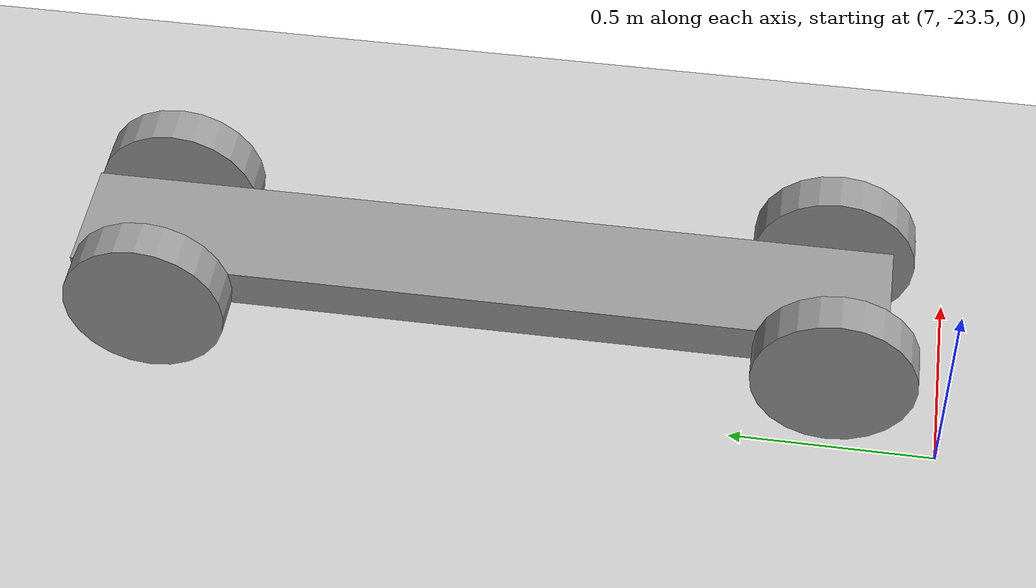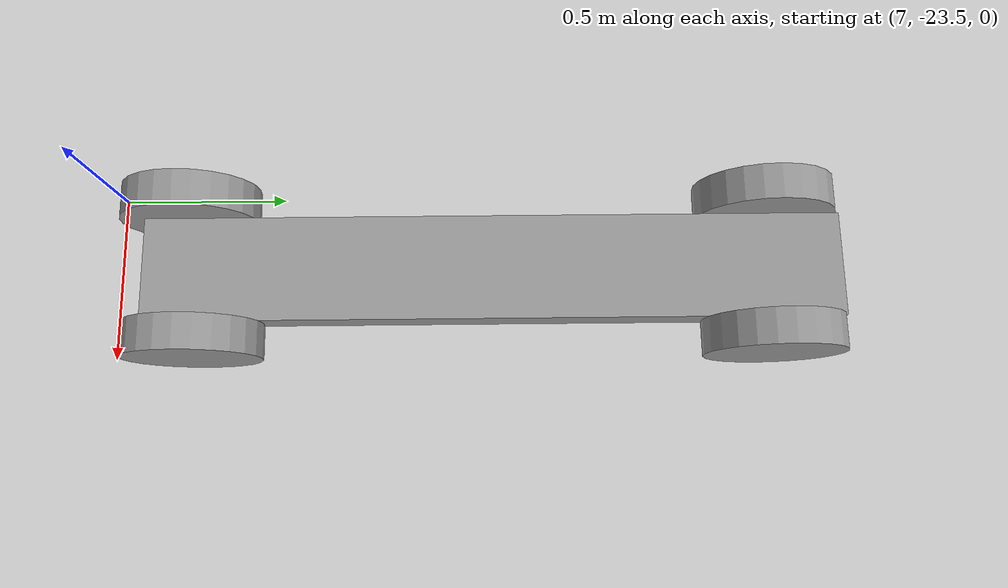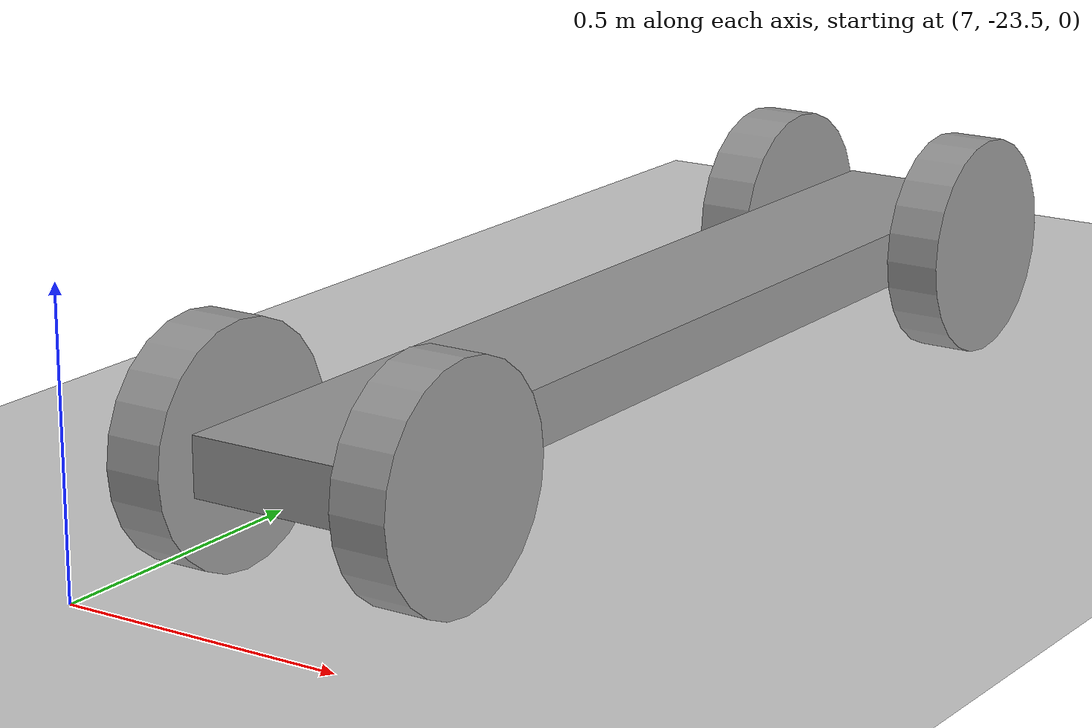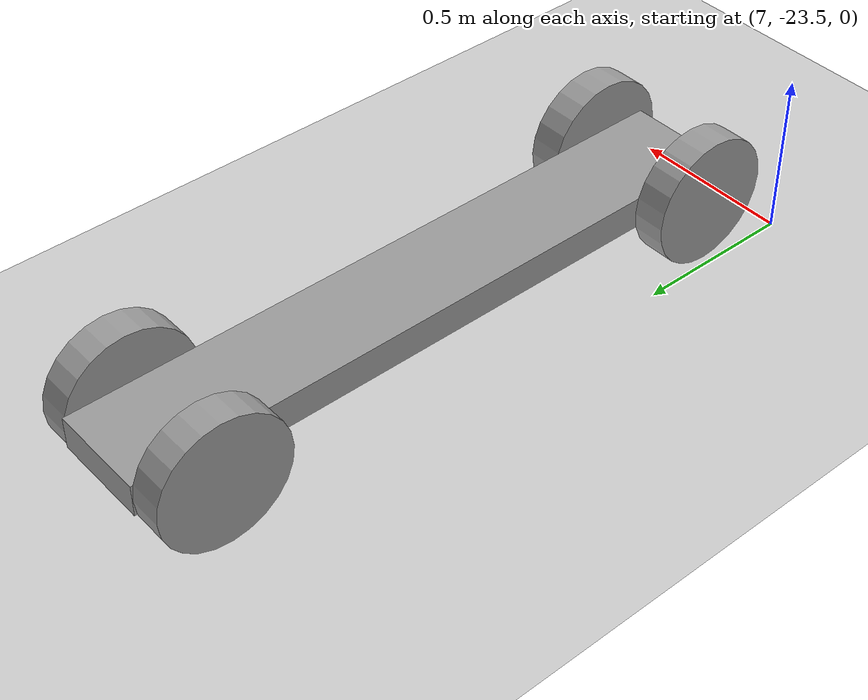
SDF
<sdf version="1.6">
 <world name="default">
  <model name="ground_plane">
   <static>1</static>
   <link name="link">
    <collision name="collision">
     <geometry><plane><normal>0 0 1</normal><size>100 100</size></plane></geometry>
     <surface>
      <contact><collide_bitmask>65535</collide_bitmask></contact>
      <friction><ode><mu>100</mu><mu2>50</mu2></ode></friction>
     </surface>
    </collision>
    <visual name="visual">
     <cast_shadows>0</cast_shadows>
     <geometry><plane><normal>0 0 1</normal><size>100 100</size></plane></geometry>
     <material>
      <script><uri>file://media/materials/scripts/gazebo.material</uri><name>Gazebo/Grey</name></script>
     </material>
    </visual>
   </link>
  </model>
  <model name="myrobot_2">
   <link name="link_0">
    <pose>-20.1793 -31.7509 0.74 0 -0 0</pose>
    <inertial>
     <mass>1</mass>
     <inertia>
      <ixx>0.166667</ixx>
      <ixy>0</ixy>
      <ixz>0</ixz>
      <iyy>0.166667</iyy>
      <iyz>0</iyz>
      <izz>0.166667</izz>
     </inertia>
    </inertial>
    <visual name="visual">
     <pose>0 0 -0.3 0 -0 0</pose>
     <geometry><box><size>0.3 2 0.1</size></box></geometry>
     <material>
      <lighting>1</lighting>
      <script><uri>file://media/materials/scripts/gazebo.material</uri><name>Gazebo/Grey</name></script>
      <shader type="pixel"><normal_map>__default__</normal_map></shader>
      <ambient>0.3 0.3 0.3 1</ambient>
      <diffuse>0.7 0.7 0.7 1</diffuse>
      <specular>0.01 0.01 0.01 1</specular>
      <emissive>0 0 0 1</emissive>
     </material>
    </visual>
    <collision name="collision">
     <pose>0 0 -0.3 0 -0 0</pose>
     <geometry><box><size>0.3 2 0.1</size></box></geometry>
     <surface>
      <friction>
       <ode><mu>1</mu><mu2>1</mu2><fdir1>0 0 0</fdir1><slip1>0</slip1><slip2>0</slip2></ode>
       <torsional>
        <coefficient>1</coefficient>
        <patch_radius>0</patch_radius>
        <surface_radius>0</surface_radius>
        <use_patch_radius>1</use_patch_radius>
        <ode><slip>0</slip></ode>
       </torsional>
      </friction>
      <bounce><restitution_coefficient>0</restitution_coefficient><threshold>1e+06</threshold></bounce>
      <contact>
       <collide_without_contact>0</collide_without_contact>
       <collide_without_contact_bitmask>1</collide_without_contact_bitmask>
       <collide_bitmask>1</collide_bitmask>
       <ode>
        <soft_cfm>0</soft_cfm>
        <soft_erp>0.2</soft_erp>
        <kp>1e+13</kp>
        <kd>1</kd>
        <max_vel>0.01</max_vel>
        <min_depth>0</min_depth>
       </ode>
       <bullet>
        <split_impulse>1</split_impulse>
        <split_impulse_penetration_threshold>-0.01</split_impulse_penetration_threshold>
        <soft_cfm>0</soft_cfm>
        <soft_erp>0.2</soft_erp>
        <kp>1e+13</kp>
        <kd>1</kd>
       </bullet>
      </contact>
     </surface>
    </collision>
   </link>
   <link name="link_1">
    <pose>-20.3793 -30.9528 0.44 1.5707 0 1.5707</pose>
    <inertial>
     <mass>1</mass>
     <inertia><ixx>0.145833</ixx><ixy>0</ixy><ixz>0</ixz><iyy>0.145833</iyy><iyz>0</iyz><izz>0.125</izz></inertia>
    </inertial>
    <visual name="visual">
     <geometry><cylinder><radius>0.2</radius><length>0.1</length></cylinder></geometry>
     <material>
      <lighting>1</lighting>
      <script><uri>file://media/materials/scripts/gazebo.material</uri><name>Gazebo/Grey</name></script>
      <shader type="pixel"><normal_map>__default__</normal_map></shader>
      <ambient>0.3 0.3 0.3 1</ambient>
      <diffuse>0.7 0.7 0.7 1</diffuse>
      <specular>0.01 0.01 0.01 1</specular>
      <emissive>0 0 0 1</emissive>
     </material>
    </visual>
    <collision name="collision">
     <geometry><cylinder><radius>0.2</radius><length>0.1</length></cylinder></geometry>
     <surface>
      <friction>
       <ode><mu>1</mu><mu2>1</mu2><fdir1>0 0 0</fdir1><slip1>0</slip1><slip2>0</slip2></ode>
       <torsional>
        <coefficient>1</coefficient>
        <patch_radius>0</patch_radius>
        <surface_radius>0</surface_radius>
        <use_patch_radius>1</use_patch_radius>
        <ode><slip>0</slip></ode>
       </torsional>
      </friction>
      <bounce><restitution_coefficient>0</restitution_coefficient><threshold>1e+06</threshold></bounce>
      <contact>
       <collide_without_contact>0</collide_without_contact>
       <collide_without_contact_bitmask>1</collide_without_contact_bitmask>
       <collide_bitmask>1</collide_bitmask>
       <ode>
        <soft_cfm>0</soft_cfm>
        <soft_erp>0.2</soft_erp>
        <kp>1e+13</kp>
        <kd>1</kd>
        <max_vel>0.01</max_vel>
        <min_depth>0</min_depth>
       </ode>
       <bullet>
        <split_impulse>1</split_impulse>
        <split_impulse_penetration_threshold>-0.01</split_impulse_penetration_threshold>
        <soft_cfm>0</soft_cfm>
        <soft_erp>0.2</soft_erp>
        <kp>1e+13</kp>
        <kd>1</kd>
       </bullet>
      </contact>
     </surface>
    </collision>
   </link>
   <link name="link_1_clone">
    <pose>-19.9793 -30.9509 0.44 1.5707 0 1.5707</pose>
    <inertial>
     <mass>1</mass>
     <inertia><ixx>0.145833</ixx><ixy>0</ixy><ixz>0</ixz><iyy>0.145833</iyy><iyz>0</iyz><izz>0.125</izz></inertia>
    </inertial>
    <visual name="visual">
     <geometry><cylinder><radius>0.2</radius><length>0.1</length></cylinder></geometry>
     <material>
      <lighting>1</lighting>
      <script><uri>file://media/materials/scripts/gazebo.material</uri><name>Gazebo/Grey</name></script>
      <shader type="pixel"><normal_map>__default__</normal_map></shader>
      <ambient>0.3 0.3 0.3 1</ambient>
      <diffuse>0.7 0.7 0.7 1</diffuse>
      <specular>0.01 0.01 0.01 1</specular>
      <emissive>0 0 0 1</emissive>
     </material>
    </visual>
    <collision name="collision">
     <geometry><cylinder><radius>0.2</radius><length>0.1</length></cylinder></geometry>
     <surface>
      <friction>
       <ode><mu>1</mu><mu2>1</mu2><fdir1>0 0 0</fdir1><slip1>0</slip1><slip2>0</slip2></ode>
       <torsional>
        <coefficient>1</coefficient>
        <patch_radius>0</patch_radius>
        <surface_radius>0</surface_radius>
        <use_patch_radius>1</use_patch_radius>
        <ode><slip>0</slip></ode>
       </torsional>
      </friction>
      <bounce><restitution_coefficient>0</restitution_coefficient><threshold>1e+06</threshold></bounce>
      <contact>
       <collide_without_contact>0</collide_without_contact>
       <collide_without_contact_bitmask>1</collide_without_contact_bitmask>
       <collide_bitmask>1</collide_bitmask>
       <ode>
        <soft_cfm>0</soft_cfm>
        <soft_erp>0.2</soft_erp>
        <kp>1e+13</kp>
        <kd>1</kd>
        <max_vel>0.01</max_vel>
        <min_depth>0</min_depth>
       </ode>
       <bullet>
        <split_impulse>1</split_impulse>
        <split_impulse_penetration_threshold>-0.01</split_impulse_penetration_threshold>
        <soft_cfm>0</soft_cfm>
        <soft_erp>0.2</soft_erp>
        <kp>1e+13</kp>
        <kd>1</kd>
       </bullet>
      </contact>
     </surface>
    </collision>
   </link>
   <link name="link_1_clone_0">
    <pose>-20.3793 -32.6307 0.44 1.5707 0 1.5707</pose>
    <inertial>
     <mass>1</mass>
     <inertia><ixx>0.145833</ixx><ixy>0</ixy><ixz>0</ixz><iyy>0.145833</iyy><iyz>0</iyz><izz>0.125</izz></inertia>
    </inertial>
    <visual name="visual">
     <geometry><cylinder><radius>0.2</radius><length>0.1</length></cylinder></geometry>
     <material>
      <lighting>1</lighting>
      <script><uri>file://media/materials/scripts/gazebo.material</uri><name>Gazebo/Grey</name></script>
      <shader type="pixel"><normal_map>__default__</normal_map></shader>
      <ambient>0.3 0.3 0.3 1</ambient>
      <diffuse>0.7 0.7 0.7 1</diffuse>
      <specular>0.01 0.01 0.01 1</specular>
      <emissive>0 0 0 1</emissive>
     </material>
    </visual>
    <collision name="collision">
     <geometry><cylinder><radius>0.2</radius><length>0.1</length></cylinder></geometry>
     <surface>
      <friction>
       <ode><mu>1</mu><mu2>1</mu2><fdir1>0 0 0</fdir1><slip1>0</slip1><slip2>0</slip2></ode>
       <torsional>
        <coefficient>1</coefficient>
        <patch_radius>0</patch_radius>
        <surface_radius>0</surface_radius>
        <use_patch_radius>1</use_patch_radius>
        <ode><slip>0</slip></ode>
       </torsional>
      </friction>
      <bounce><restitution_coefficient>0</restitution_coefficient><threshold>1e+06</threshold></bounce>
      <contact>
       <collide_without_contact>0</collide_without_contact>
       <collide_without_contact_bitmask>1</collide_without_contact_bitmask>
       <collide_bitmask>1</collide_bitmask>
       <ode>
        <soft_cfm>0</soft_cfm>
        <soft_erp>0.2</soft_erp>
        <kp>1e+13</kp>
        <kd>1</kd>
        <max_vel>0.01</max_vel>
        <min_depth>0</min_depth>
       </ode>
       <bullet>
        <split_impulse>1</split_impulse>
        <split_impulse_penetration_threshold>-0.01</split_impulse_penetration_threshold>
        <soft_cfm>0</soft_cfm>
        <soft_erp>0.2</soft_erp>
        <kp>1e+13</kp>
        <kd>1</kd>
       </bullet>
      </contact>
     </surface>
    </collision>
   </link>
   <link name="link_1_clone_1">
    <pose>-19.9793 -32.6069 0.44 1.5707 0 1.5707</pose>
    <inertial>
     <mass>1</mass>
     <inertia><ixx>0.145833</ixx><ixy>0</ixy><ixz>0</ixz><iyy>0.145833</iyy><iyz>0</iyz><izz>0.125</izz></inertia>
    </inertial>
    <visual name="visual">
     <geometry><cylinder><radius>0.2</radius><length>0.1</length></cylinder></geometry>
     <material>
      <lighting>1</lighting>
      <script><uri>file://media/materials/scripts/gazebo.material</uri><name>Gazebo/Grey</name></script>
      <shader type="pixel"><normal_map>__default__</normal_map></shader>
      <ambient>0.3 0.3 0.3 1</ambient>
      <diffuse>0.7 0.7 0.7 1</diffuse>
      <specular>0.01 0.01 0.01 1</specular>
      <emissive>0 0 0 1</emissive>
     </material>
    </visual>
    <collision name="collision">
     <geometry><cylinder><radius>0.2</radius><length>0.1</length></cylinder></geometry>
     <surface>
      <friction>
       <ode><mu>1</mu><mu2>1</mu2><fdir1>0 0 0</fdir1><slip1>0</slip1><slip2>0</slip2></ode>
       <torsional>
        <coefficient>1</coefficient>
        <patch_radius>0</patch_radius>
        <surface_radius>0</surface_radius>
        <use_patch_radius>1</use_patch_radius>
        <ode><slip>0</slip></ode>
       </torsional>
      </friction>
      <bounce><restitution_coefficient>0</restitution_coefficient><threshold>1e+06</threshold></bounce>
      <contact>
       <collide_without_contact>0</collide_without_contact>
       <collide_without_contact_bitmask>1</collide_without_contact_bitmask>
       <collide_bitmask>1</collide_bitmask>
       <ode>
        <soft_cfm>0</soft_cfm>
        <soft_erp>0.2</soft_erp>
        <kp>1e+13</kp>
        <kd>1</kd>
        <max_vel>0.01</max_vel>
        <min_depth>0</min_depth>
       </ode>
       <bullet>
        <split_impulse>1</split_impulse>
        <split_impulse_penetration_threshold>-0.01</split_impulse_penetration_threshold>
        <soft_cfm>0</soft_cfm>
        <soft_erp>0.2</soft_erp>
        <kp>1e+13</kp>
        <kd>1</kd>
       </bullet>
      </contact>
     </surface>
    </collision>
   </link>
   <joint name="link_0_JOINT_1" type="revolute">
    <parent>link_0</parent>
    <child>link_1</child>
    <axis>
     <xyz>1 0 0</xyz>
     <use_parent_model_frame>0</use_parent_model_frame>
     <limit>
      <lower>-1.79769e+308</lower>
      <upper>1.79769e+308</upper>
      <effort>-1</effort>
      <velocity>-1</velocity>
     </limit>
     <dynamics>
      <spring_reference>0</spring_reference>
      <spring_stiffness>0</spring_stiffness>
      <damping>0</damping>
     </dynamics>
    </axis>
    <physics>
     <ode><limit><cfm>0</cfm><erp>0.2</erp></limit><suspension><cfm>0</cfm><erp>0.2</erp></suspension></ode>
    </physics>
   </joint>
   <joint name="link_0_JOINT_2" type="revolute">
    <parent>link_0</parent>
    <child>link_1_clone</child>
    <axis>
     <xyz>1 0 0</xyz>
     <use_parent_model_frame>0</use_parent_model_frame>
     <limit>
      <lower>-1.79769e+308</lower>
      <upper>1.79769e+308</upper>
      <effort>-1</effort>
      <velocity>-1</velocity>
     </limit>
     <dynamics>
      <spring_reference>0</spring_reference>
      <spring_stiffness>0</spring_stiffness>
      <damping>0</damping>
     </dynamics>
    </axis>
    <physics>
     <ode><limit><cfm>0</cfm><erp>0.2</erp></limit><suspension><cfm>0</cfm><erp>0.2</erp></suspension></ode>
    </physics>
   </joint>
   <joint name="link_0_JOINT_4" type="revolute">
    <parent>link_0</parent>
    <child>link_1_clone_1</child>
    <axis>
     <xyz>1 0 0</xyz>
     <use_parent_model_frame>0</use_parent_model_frame>
     <limit>
      <lower>-1.79769e+308</lower>
      <upper>1.79769e+308</upper>
      <effort>-1</effort>
      <velocity>-1</velocity>
     </limit>
     <dynamics>
      <spring_reference>0</spring_reference>
      <spring_stiffness>0</spring_stiffness>
      <damping>0</damping>
     </dynamics>
    </axis>
    <physics>
     <ode><limit><cfm>0</cfm><erp>0.2</erp></limit><suspension><cfm>0</cfm><erp>0.2</erp></suspension></ode>
    </physics>
   </joint>
   <joint name="link_0_JOINT_5" type="revolute">
    <parent>link_0</parent>
    <child>link_1_clone_0</child>
    <axis>
     <xyz>1 0 0</xyz>
     <use_parent_model_frame>0</use_parent_model_frame>
     <limit>
      <lower>-1.79769e+308</lower>
      <upper>1.79769e+308</upper>
      <effort>-1</effort>
      <velocity>-1</velocity>
     </limit>
     <dynamics>
      <spring_reference>0</spring_reference>
      <spring_stiffness>0</spring_stiffness>
      <damping>0</damping>
     </dynamics>
    </axis>
    <physics>
     <ode><limit><cfm>0</cfm><erp>0.2</erp></limit><suspension><cfm>0</cfm><erp>0.2</erp></suspension></ode>
    </physics>
   </joint>
   <static>0</static>
   <pose>27.4545 9.39533 -0.24 0 -0 2.6e-05</pose>
  </model>
 </world>
</sdf>
